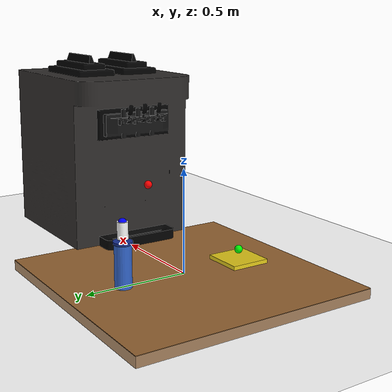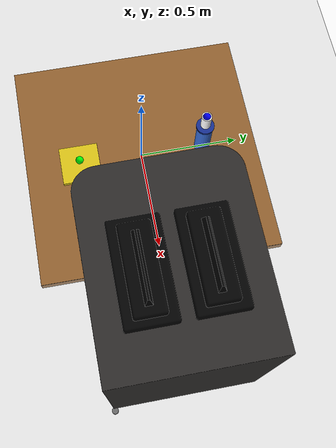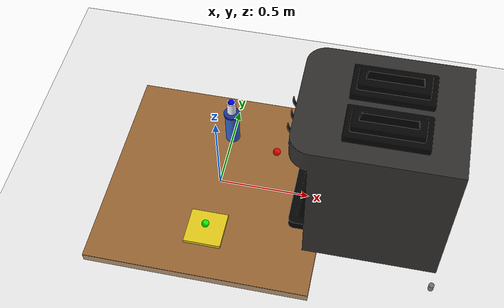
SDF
<?xml version="1.0" ?>
[Serving Tray]
               0,0,0                x=0.0, y=-0.35

  All objects placed within 450mm reach of the robot base.
  Heights designed so the robot end-effector can reach them.
-->
<sdf version="1.7">
  <world name="default">

    <!-- Physics -->
    <plugin filename="gz-sim-physics-system"
            name="gz::sim::systems::Physics"/>

    <!-- User commands -->
    <plugin filename="gz-sim-user-commands-system"
            name="gz::sim::systems::UserCommands"/>

    <!-- Scene broadcaster -->
    <plugin filename="gz-sim-scene-broadcaster-system"
            name="gz::sim::systems::SceneBroadcaster"/>

    <!-- Sensors -->
    <plugin filename="gz-sim-sensors-system"
            name="gz::sim::systems::Sensors">
      <render_engine>ogre2</render_engine>
    </plugin>

    <gravity>0.0 0.0 -9.8</gravity>

    <!-- ── Lighting ──────────────────────────────────────────────────────── -->
    <light name="sun" type="directional">
      <cast_shadows>true</cast_shadows>
      <pose>0 0 10 0 0 0</pose>
      <diffuse>0.8 0.8 0.8 1</diffuse>
      <specular>0.2 0.2 0.2 1</specular>
      <direction>-0.5 0.1 -0.9</direction>
    </light>

    <!-- ── Ground plane ──────────────────────────────────────────────────── -->
    <model name="ground_plane">
      <static>true</static>
      <link name="link">
        <collision name="collision">
          <geometry><plane><normal>0 0 1</normal><size>10 10</size></plane></geometry>
        </collision>
        <visual name="visual">
          <geometry><plane><normal>0 0 1</normal><size>10 10</size></plane></geometry>
          <material>
            <ambient>0.8 0.8 0.8 1</ambient>
            <diffuse>0.8 0.8 0.8 1</diffuse>
          </material>
        </visual>
      </link>
    </model>

    <!-- ── Workbench (table the robot sits on) ───────────────────────────── -->
    <model name="workbench">
      <static>true</static>
      <pose>0 0 0 0 0 0</pose>
      <link name="link">
        <collision name="collision">
          <geometry>
            <box><size>1.2 1.2 0.05</size></box>
          </geometry>
          <pose>0 0 -0.025 0 0 0</pose>
        </collision>
        <visual name="visual">
          <pose>0 0 -0.025 0 0 0</pose>
          <geometry>
            <box><size>1.2 1.2 0.05</size></box>
          </geometry>
          <material>
            <ambient>0.6 0.4 0.2 1</ambient>
            <diffuse>0.6 0.4 0.2 1</diffuse>
          </material>
        </visual>
      </link>
    </model>

    <!-- ── Cup Dispenser ─────────────────────────────────────────────────── -->
    <!-- Position: left side of robot (y=+0.32), within reach -->
    <!-- A tall cylinder representing the cup stack dispenser -->
    <model name="cup_dispenser">
      <static>true</static>
      <pose>0.0 0.32 0 0 0 0</pose>
      <link name="body">
        <collision name="collision">
          <geometry>
            <cylinder><radius>0.04</radius><length>0.20</length></cylinder>
          </geometry>
          <pose>0 0 0.10 0 0 0</pose>
        </collision>
        <visual name="visual">
          <pose>0 0 0.10 0 0 0</pose>
          <geometry>
            <cylinder><radius>0.04</radius><length>0.20</length></cylinder>
          </geometry>
          <material>
            <ambient>0.2 0.4 0.8 1</ambient>
            <diffuse>0.2 0.4 0.8 1</diffuse>
          </material>
        </visual>
      </link>
      <!-- Cup slot indicator (small disc on top) -->
      <link name="slot">
        <pose>0 0 0.21 0 0 0</pose>
        <collision name="collision">
          <geometry>
            <cylinder><radius>0.045</radius><length>0.01</length></cylinder>
          </geometry>
        </collision>
        <visual name="visual">
          <geometry>
            <cylinder><radius>0.045</radius><length>0.01</length></cylinder>
          </geometry>
          <material>
            <ambient>0.1 0.2 0.6 1</ambient>
            <diffuse>0.1 0.2 0.6 1</diffuse>
          </material>
        </visual>
      </link>
      <joint name="fixed" type="fixed">
        <parent>body</parent>
        <child>slot</child>
      </joint>
    </model>

    <!-- Cup (sitting on top of dispenser, robot will grab this) -->
    <model name="cup">
      <pose>0.0 0.32 0.225 0 0 0</pose>
      <link name="link">
        <collision name="collision">
          <geometry>
            <cylinder><radius>0.025</radius><length>0.08</length></cylinder>
          </geometry>
          <pose>0 0 0.04 0 0 0</pose>
        </collision>
        <visual name="visual">
          <pose>0 0 0.04 0 0 0</pose>
          <geometry>
            <cylinder><radius>0.025</radius><length>0.08</length></cylinder>
          </geometry>
          <material>
            <ambient>1.0 1.0 1.0 1</ambient>
            <diffuse>1.0 1.0 1.0 1</diffuse>
          </material>
        </visual>
        <inertial>
          <mass>0.05</mass>
          <inertia>
            <ixx>0.0001</ixx><ixy>0</ixy><ixz>0</ixz>
            <iyy>0.0001</iyy><iyz>0</iyz>
            <izz>0.0001</izz>
          </inertia>
        </inertial>
      </link>
    </model>

    <!-- ── Ice Cream Machine ─────────────────────────────────────────────── -->
    <!-- Position: front-right of robot (x=+0.32), within reach -->
    <model name="icecream_machine">
      <static>true</static>
      <pose>1.2258 -0.3474 0.1665 3.1367 0.0 -3.1362</pose>
      <link name="body">
        <collision name="collision">
          <geometry>
            <mesh>
              <uri>package://mycobot_description/meshes/icecream_station/icecream_machine.dae</uri>
              <scale>1 1 1</scale>
            </mesh>
          </geometry>
          <pose>0 0 0.15 0 0 0</pose>
        </collision>
        <visual name="visual">
          <pose>0 0 0.15 0 0 0</pose>
          <geometry>
            <mesh>
              <uri>package://mycobot_description/meshes/icecream_station/icecream_machine.dae</uri>
              <scale>1 1 1</scale>
            </mesh>
          </geometry>
        </visual>
      </link>
      <!-- Nozzle (where ice cream comes out) -->
      <link name="nozzle">
        <pose>0 0 0.305 0 0 0</pose>
        <collision name="collision">
          <geometry>
            <cylinder><radius>0.015</radius><length>0.04</length></cylinder>
          </geometry>
        </collision>
        <visual name="visual">
          <geometry>
            <cylinder><radius>0.015</radius><length>0.04</length></cylinder>
          </geometry>
          <material>
            <ambient>0.3 0.3 0.3 1</ambient>
            <diffuse>0.3 0.3 0.3 1</diffuse>
          </material>
        </visual>
      </link>
      <joint name="fixed" type="fixed">
        <parent>body</parent>
        <child>nozzle</child>
      </joint>
    </model>

    <!-- ── Serving Tray ───────────────────────────────────────────────────── -->
    <!-- Position: front of robot (y=-0.32), where customer picks up -->
    <model name="serving_tray">
      <static>true</static>
      <pose>0.0 -0.32 0 0 0 0</pose>
      <link name="link">
        <collision name="collision">
          <geometry>
            <box><size>0.20 0.20 0.02</size></box>
          </geometry>
          <pose>0 0 0.01 0 0 0</pose>
        </collision>
        <visual name="visual">
          <pose>0 0 0.01 0 0 0</pose>
          <geometry>
            <box><size>0.20 0.20 0.02</size></box>
          </geometry>
          <material>
            <ambient>0.9 0.8 0.1 1</ambient>
            <diffuse>0.9 0.8 0.1 1</diffuse>
          </material>
        </visual>
      </link>
    </model>

    <!-- ── Labels (colored markers so you can identify objects) ──────────── -->
    <!-- Blue sphere = cup dispenser marker -->
    <model name="marker_dispenser">
      <static>true</static>
      <pose>0.0 0.32 0.30 0 0 0</pose>
      <link name="link">
        <visual name="visual">
          <geometry><sphere><radius>0.02</radius></sphere></geometry>
          <material><ambient>0 0 1 1</ambient><diffuse>0 0 1 1</diffuse></material>
        </visual>
      </link>
    </model>

    <!-- Red sphere = ice cream machine marker -->
    <model name="marker_icecream">
      <static>true</static>
      <pose>0.32 0.0 0.36 0 0 0</pose>
      <link name="link">
        <visual name="visual">
          <geometry><sphere><radius>0.02</radius></sphere></geometry>
          <material><ambient>1 0 0 1</ambient><diffuse>1 0 0 1</diffuse></material>
        </visual>
      </link>
    </model>

    <!-- Green sphere = serving tray marker -->
    <model name="marker_serving">
      <static>true</static>
      <pose>0.0 -0.32 0.06 0 0 0</pose>
      <link name="link">
        <visual name="visual">
          <geometry><sphere><radius>0.02</radius></sphere></geometry>
          <material><ambient>0 1 0 1</ambient><diffuse>0 1 0 1</diffuse></material>
        </visual>
      </link>
    </model>

  </world>
</sdf>
